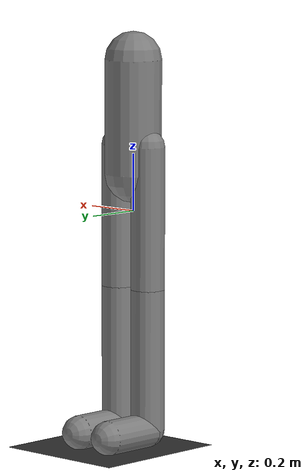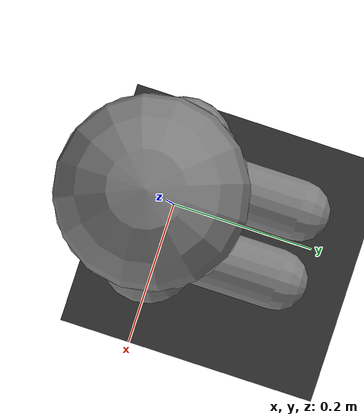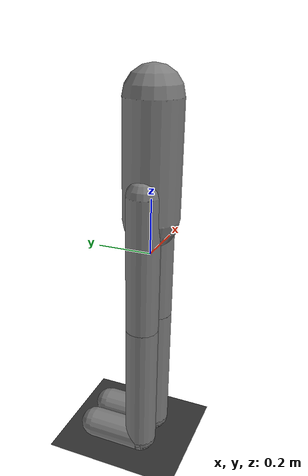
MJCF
<mujoco model="locomotion">
  <compiler inertiafromgeom="true" angle="radian" coordinate="local"/>
  <option timestep="0.002" gravity="0 0 -9.8" iterations='20'/>
  <visual>
    <map fogstart="3" fogend="5"/>
  </visual>

	<size nuser_geom='1' nkey='5'/>
  <default>
    <joint armature='0.04' damping=".1" limited="true" />
    <geom friction=".8 .8 .1" margin="0.002" condim="3" contype="1" conaffinity="1" density="100"/>
  </default>
  <worldbody>
    <light directional='false' diffuse='.8 .8 .8' specular='0.3 0.3 0.3' pos='0 0 4.5' dir='0 0 -1'/>
    <geom name="groud_box" pos="0 0 -0.83" material="MatPlane" rgba="0.2 0.2 0.2 1" type="plane" size="10.0 10.0 1" condim='3' />
    <body name="lower_body_frame" pos="0 0 0.23">

      <geom name="body1" type="capsule" fromto="0 0 -0.1 0 0 0.3" size="0.001"/>

      <joint name="lower_body_slide_fb" type="slide" pos="0 0 0" axis="0 1 0" limited="false"/>
      <joint name="lower_body_slide_ud" type="slide" pos="0 0 0" axis="0 0 1" limited="false" />
      <joint name="lower_body_rotation" type="hinge" pos="0 0 0" axis="1 0 0" range="-0.1 0.1"/>

      <joint name="lower_body_turn" type="hinge" pos="0 0 0" axis="0 0 1" range="-6.3 6.3"/>
      <joint name="lower_body_shake" type="hinge" pos="0 0 0" axis="0 1 0" range="-1.57 1.57"/>
      <joint name="lower_body_lr" type="slide" pos="0 0 0" axis="1 0 0" limited="false"/>

      <body name="lower_body" pos="0 0 0">
        <geom name="body" type="capsule" fromto="0 0 -0.1 0 0 0.3" size="0.10"/>

        <body name="r_thigh_link" pos="0.07 0 0">
          <geom name="rt" type="capsule" fromto="0 0 -0.5 0 0 0" size="0.06" contype="0" conaffinity="0"/>

          <joint name="r_thigh_joint_fb" type="hinge" pos="0 0 0" axis="1 0 0" range="-0.1 1.3963"/>
          <joint name="r_thigh_joint_lr" type="hinge" pos="0 0 0" axis="0 1 0" range="-1.0 1.0"/>

          <body name="r_calf_frame" pos="0 0 -0.5">
            <body name="r_calf_link" pos="0 0 0">
              <geom name="rc" type="capsule" fromto="0 0 -0.5 0 0 0" size="0.06"/>

              <joint name="r_calf_joint" type="hinge" pos="0 0 0" axis="1 0 0" range="-0.2 0"/>

              <body name="r_foot_link" pos="0 0 -0.5">
                <geom name="rf" type="capsule" fromto="0 0 0 0 0.2 0" size="0.06"/>

                <joint name="r_foot_joint" type="hinge" pos="0 0 0" axis="1 0 0" range="-1.3213 0.5"/>
              </body>
            </body>
          </body>
        </body>

        <body name="l_thigh_link" pos="-0.07 0 0">
          <geom name="lt" type="capsule" fromto="0 0 -0.5 0 0 0" size="0.06" contype="0" conaffinity="0"/>

          <joint name="l_thigh_joint_fb" type="hinge" pos="0 0 0" axis="1 0 0" range="-0.1 1.3963"/>
          <joint name="l_thigh_joint_lr" type="hinge" pos="0 0 0" axis="0 1 0" range="-1.0 1.0"/>

          <body name="l_carf_frame" pos="0 0 -0.5">

            <body name="l_calf_link" pos="0 0 0">
              <geom name="lc" type="capsule" fromto="0 0 -0.5 0 0 0" size="0.06"/>

              <joint name="l_calf_joint" type="hinge" pos="0 0 0" axis="1 0 0" range="-0.2 0"/>

              <body name="l_foot_link" pos="0 0 -0.5">
                <geom name="lf" type="capsule" fromto="0 0 0 0 0.2 0" size="0.06"/>

                <joint name="l_foot_joint" type="hinge" pos="0 0 0" axis="1 0 0" range="-1.3213 0.5"/>
              </body>
            </body>
          </body>
        </body>
      </body>
    </body>

  </worldbody>
  <actuator>
    <motor joint="r_thigh_joint_fb" ctrlrange="-25.0 25.0" ctrllimited="true"/>
    <motor joint="r_thigh_joint_fb" ctrlrange="-25.0 25.0" ctrllimited="true"/>
    <motor joint="r_calf_joint" ctrlrange="-20.0 20.0" ctrllimited="true"/>
    <motor joint="r_foot_joint" ctrlrange="-20.0 20.0" ctrllimited="true"/>
    <motor joint="l_thigh_joint_fb" ctrlrange="-25.0 25.0" ctrllimited="true"/>
    <motor joint="l_calf_joint" ctrlrange="-20.0 20.0" ctrllimited="true"/>
    <motor joint="l_foot_joint" ctrlrange="-20.0 20.0" ctrllimited="true"/>
  </actuator>

  <asset>
    <texture type="skybox" builtin="gradient" width="100" height="100" rgb1=".4 .6 .8"
        rgb2="0 0 0"/>
    <texture name="texgeom" type="cube" builtin="flat" mark="cross" width="127" height="1278"
        rgb1="0.8 0.6 0.4" rgb2="0.8 0.6 0.4" markrgb="1 1 1" random="0.01"/>
    <texture name="texplane" type="2d" builtin="checker" rgb1=".2 .3 .4" rgb2=".1 0.15 0.2"
        width="100" height="100"/>

    <material name='MatPlane' reflectance='0.5' texture="texplane"/>
    <material name='geom' texture="texgeom" texuniform="true"/>
  </asset>

</mujoco>
